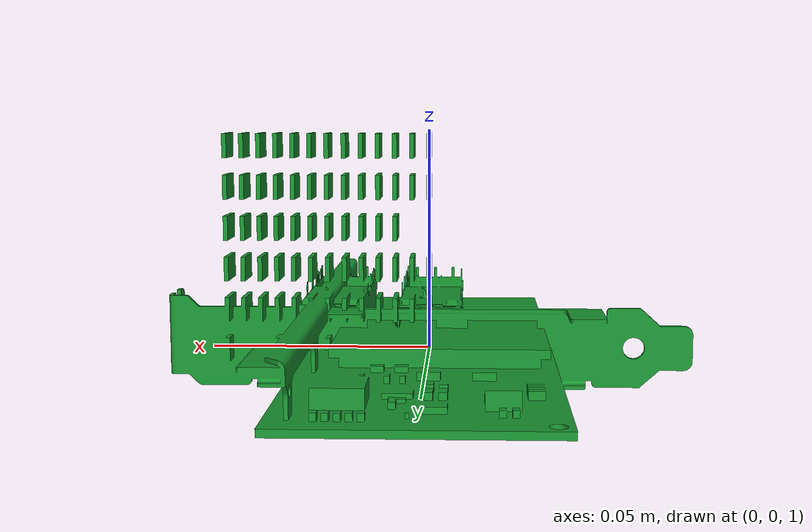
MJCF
<mujoco>
  <asset>
    <mesh name="test_nic" file="manual_nic_card.obj" scale="1 1 1"/>
    <material name="test_green" rgba="0.1 0.6 0.2 1"/>
  </asset>
  <worldbody>
    <light pos="0 0 3" dir="0 0 -1" diffuse="1 1 1"/>
    <body pos="0 0 1">
      <geom type="mesh" mesh="test_nic" material="test_green" contype="0" conaffinity="0"/>
    </body>
    <geom type="plane" size="2 2 0.01" rgba="0.5 0.5 0.5 1"/>
  </worldbody>
</mujoco>
